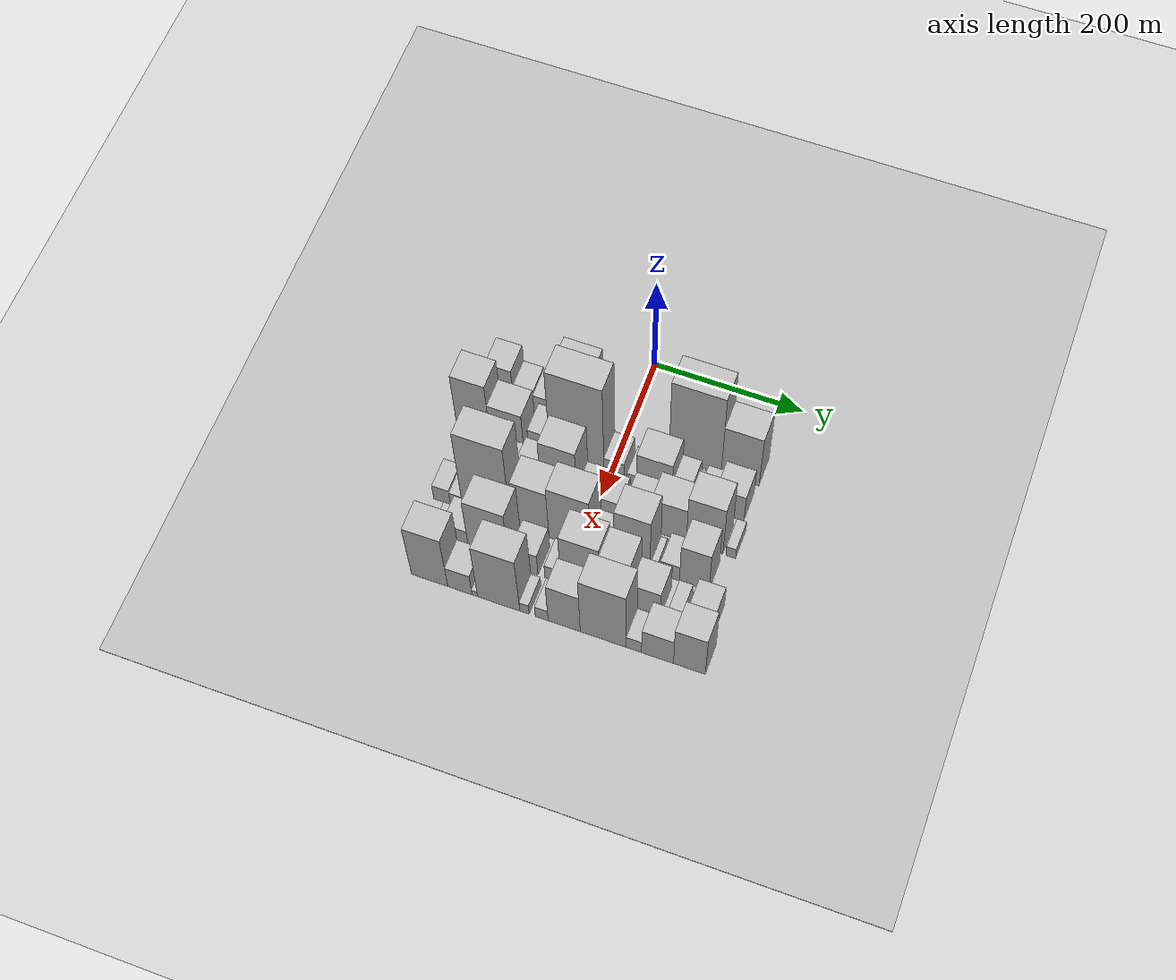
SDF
<sdf version="1.6">
 <world name="default">
  <include><name>ground_plane_1</name><uri>model://HANNAS_ground_plane</uri></include>
  <include>
   <name>ground_plane_2</name>
   <uri>model://HANNAS_ground_plane</uri>
   <pose>100 0 0  0 0 0</pose>
  </include>
  <model name="building_23">
   <static>1</static>
   <pose>100.0000 -166.8493 0 0.000000 0.000000 0.000000</pose>
   <link name="link">
    <pose>0 0 46.50 0 0 0</pose>
    <collision name="collision"><geometry><box><size>40.0000 34.8307 93.0000</size></box></geometry></collision>
    <visual name="visual">
     <cast_shadows>0</cast_shadows>
     <geometry><box><size>40.0000 34.8307 93.0000</size></box></geometry>
     <material>
      <script>
       <uri>model://HANNAS_wall/materials/scripts</uri>
       <uri>model://HANNAS_wall/materials/textures</uri>
       <name>vrc/HANNAS_wall</name>
      </script>
     </material>
    </visual>
   </link>
  </model>
  <model name="building_24">
   <static>1</static>
   <pose>100.0000 -135.8265 0 0.000000 0.000000 0.000000</pose>
   <link name="link">
    <pose>0 0 27.00 0 0 0</pose>
    <collision name="collision"><geometry><box><size>40.0000 27.2150 54.0000</size></box></geometry></collision>
    <visual name="visual">
     <cast_shadows>0</cast_shadows>
     <geometry><box><size>40.0000 27.2150 54.0000</size></box></geometry>
     <material>
      <script>
       <uri>model://HANNAS_wall/materials/scripts</uri>
       <uri>model://HANNAS_wall/materials/textures</uri>
       <name>vrc/HANNAS_wall</name>
      </script>
     </material>
    </visual>
   </link>
  </model>
  <model name="building_25">
   <static>1</static>
   <pose>100.0000 -110.0625 0 0.000000 0.000000 0.000000</pose>
   <link name="link">
    <pose>0 0 24.00 0 0 0</pose>
    <collision name="collision"><geometry><box><size>40.0000 24.3129 48.0000</size></box></geometry></collision>
    <visual name="visual">
     <cast_shadows>0</cast_shadows>
     <geometry><box><size>40.0000 24.3129 48.0000</size></box></geometry>
     <material>
      <script>
       <uri>model://HANNAS_wall/materials/scripts</uri>
       <uri>model://HANNAS_wall/materials/textures</uri>
       <name>vrc/HANNAS_wall</name>
      </script>
     </material>
    </visual>
   </link>
  </model>
  <model name="building_26">
   <static>1</static>
   <pose>100.0000 -66.6376 0 0.000000 0.000000 0.000000</pose>
   <link name="link">
    <pose>0 0 75.00 0 0 0</pose>
    <collision name="collision"><geometry><box><size>40.0000 50.5369 150.0000</size></box></geometry></collision>
    <visual name="visual">
     <cast_shadows>0</cast_shadows>
     <geometry><box><size>40.0000 50.5369 150.0000</size></box></geometry>
     <material>
      <script>
       <uri>model://HANNAS_wall/materials/scripts</uri>
       <uri>model://HANNAS_wall/materials/textures</uri>
       <name>vrc/HANNAS_wall</name>
      </script>
     </material>
    </visual>
   </link>
  </model>
  <model name="building_27">
   <static>1</static>
   <pose>100.0000 95.9631 0 0.000000 0.000000 0.000000</pose>
   <link name="link">
    <pose>0 0 99.00 0 0 0</pose>
    <collision name="collision"><geometry><box><size>40.0000 69.5549 198.0000</size></box></geometry></collision>
    <visual name="visual">
     <cast_shadows>0</cast_shadows>
     <geometry><box><size>40.0000 69.5549 198.0000</size></box></geometry>
     <material>
      <script>
       <uri>model://HANNAS_wall/materials/scripts</uri>
       <uri>model://HANNAS_wall/materials/textures</uri>
       <name>vrc/HANNAS_wall</name>
      </script>
     </material>
    </visual>
   </link>
  </model>
  <model name="building_28">
   <static>1</static>
   <pose>100.0000 155.8747 0 0.000000 0.000000 0.000000</pose>
   <link name="link">
    <pose>0 0 63.00 0 0 0</pose>
    <collision name="collision"><geometry><box><size>40.0000 50.2684 126.0000</size></box></geometry></collision>
    <visual name="visual">
     <cast_shadows>0</cast_shadows>
     <geometry><box><size>40.0000 50.2684 126.0000</size></box></geometry>
     <material>
      <script>
       <uri>model://HANNAS_wall/materials/scripts</uri>
       <uri>model://HANNAS_wall/materials/textures</uri>
       <name>vrc/HANNAS_wall</name>
      </script>
     </material>
    </visual>
   </link>
  </model>
  <model name="building_67">
   <static>1</static>
   <pose>152.0000 -184.3008 0 0.000000 0.000000 0.000000</pose>
   <link name="link">
    <pose>0 0 67.50 0 0 0</pose>
    <collision name="collision"><geometry><box><size>40.0000 45.5087 135.0000</size></box></geometry></collision>
    <visual name="visual">
     <cast_shadows>0</cast_shadows>
     <geometry><box><size>40.0000 45.5087 135.0000</size></box></geometry>
     <material>
      <script>
       <uri>model://HANNAS_wall/materials/scripts</uri>
       <uri>model://HANNAS_wall/materials/textures</uri>
       <name>vrc/HANNAS_wall</name>
      </script>
     </material>
    </visual>
   </link>
  </model>
  <model name="building_68">
   <static>1</static>
   <pose>152.0000 -138.7405 0 0.000000 0.000000 0.000000</pose>
   <link name="link">
    <pose>0 0 43.50 0 0 0</pose>
    <collision name="collision"><geometry><box><size>40.0000 45.6117 87.0000</size></box></geometry></collision>
    <visual name="visual">
     <cast_shadows>0</cast_shadows>
     <geometry><box><size>40.0000 45.6117 87.0000</size></box></geometry>
     <material>
      <script>
       <uri>model://HANNAS_wall/materials/scripts</uri>
       <uri>model://HANNAS_wall/materials/textures</uri>
       <name>vrc/HANNAS_wall</name>
      </script>
     </material>
    </visual>
   </link>
  </model>
  <model name="building_69">
   <static>1</static>
   <pose>152.0000 -94.4507 0 0.000000 0.000000 0.000000</pose>
   <link name="link">
    <pose>0 0 28.50 0 0 0</pose>
    <collision name="collision"><geometry><box><size>40.0000 28.9679 57.0000</size></box></geometry></collision>
    <visual name="visual">
     <cast_shadows>0</cast_shadows>
     <geometry><box><size>40.0000 28.9679 57.0000</size></box></geometry>
     <material>
      <script>
       <uri>model://HANNAS_wall/materials/scripts</uri>
       <uri>model://HANNAS_wall/materials/textures</uri>
       <name>vrc/HANNAS_wall</name>
      </script>
     </material>
    </visual>
   </link>
  </model>
  <model name="building_70">
   <static>1</static>
   <pose>152.0000 -43.6034 0 0.000000 0.000000 0.000000</pose>
   <link name="link">
    <pose>0 0 112.50 0 0 0</pose>
    <collision name="collision"><geometry><box><size>40.0000 72.7267 225.0000</size></box></geometry></collision>
    <visual name="visual">
     <cast_shadows>0</cast_shadows>
     <geometry><box><size>40.0000 72.7267 225.0000</size></box></geometry>
     <material>
      <script>
       <uri>model://HANNAS_wall/materials/scripts</uri>
       <uri>model://HANNAS_wall/materials/textures</uri>
       <name>vrc/HANNAS_wall</name>
      </script>
     </material>
    </visual>
   </link>
  </model>
  <model name="building_71">
   <static>1</static>
   <pose>152.0000 6.1775 0 0.000000 0.000000 0.000000</pose>
   <link name="link">
    <pose>0 0 24.00 0 0 0</pose>
    <collision name="collision"><geometry><box><size>40.0000 26.8352 48.0000</size></box></geometry></collision>
    <visual name="visual">
     <cast_shadows>0</cast_shadows>
     <geometry><box><size>40.0000 26.8352 48.0000</size></box></geometry>
     <material>
      <script>
       <uri>model://HANNAS_wall/materials/scripts</uri>
       <uri>model://HANNAS_wall/materials/textures</uri>
       <name>vrc/HANNAS_wall</name>
      </script>
     </material>
    </visual>
   </link>
  </model>
  <model name="building_72">
   <static>1</static>
   <pose>152.0000 29.9495 0 0.000000 0.000000 0.000000</pose>
   <link name="link">
    <pose>0 0 13.50 0 0 0</pose>
    <collision name="collision"><geometry><box><size>40.0000 12.7089 27.0000</size></box></geometry></collision>
    <visual name="visual">
     <cast_shadows>0</cast_shadows>
     <geometry><box><size>40.0000 12.7089 27.0000</size></box></geometry>
     <material>
      <script>
       <uri>model://HANNAS_wall/materials/scripts</uri>
       <uri>model://HANNAS_wall/materials/textures</uri>
       <name>vrc/HANNAS_wall</name>
      </script>
     </material>
    </visual>
   </link>
  </model>
  <model name="building_73">
   <static>1</static>
   <pose>152.0000 59.8912 0 0.000000 0.000000 0.000000</pose>
   <link name="link">
    <pose>0 0 43.50 0 0 0</pose>
    <collision name="collision"><geometry><box><size>40.0000 47.1745 87.0000</size></box></geometry></collision>
    <visual name="visual">
     <cast_shadows>0</cast_shadows>
     <geometry><box><size>40.0000 47.1745 87.0000</size></box></geometry>
     <material>
      <script>
       <uri>model://HANNAS_wall/materials/scripts</uri>
       <uri>model://HANNAS_wall/materials/textures</uri>
       <name>vrc/HANNAS_wall</name>
      </script>
     </material>
    </visual>
   </link>
  </model>
  <model name="building_74">
   <static>1</static>
   <pose>152.0000 95.9949 0 0.000000 0.000000 0.000000</pose>
   <link name="link">
    <pose>0 0 22.50 0 0 0</pose>
    <collision name="collision"><geometry><box><size>40.0000 25.0328 45.0000</size></box></geometry></collision>
    <visual name="visual">
     <cast_shadows>0</cast_shadows>
     <geometry><box><size>40.0000 25.0328 45.0000</size></box></geometry>
     <material>
      <script>
       <uri>model://HANNAS_wall/materials/scripts</uri>
       <uri>model://HANNAS_wall/materials/textures</uri>
       <name>vrc/HANNAS_wall</name>
      </script>
     </material>
    </visual>
   </link>
  </model>
  <model name="building_75">
   <static>1</static>
   <pose>152.0000 112.9898 0 0.000000 0.000000 0.000000</pose>
   <link name="link">
    <pose>0 0 10.50 0 0 0</pose>
    <collision name="collision"><geometry><box><size>40.0000 8.9571 21.0000</size></box></geometry></collision>
    <visual name="visual">
     <cast_shadows>0</cast_shadows>
     <geometry><box><size>40.0000 8.9571 21.0000</size></box></geometry>
     <material>
      <script>
       <uri>model://HANNAS_wall/materials/scripts</uri>
       <uri>model://HANNAS_wall/materials/textures</uri>
       <name>vrc/HANNAS_wall</name>
      </script>
     </material>
    </visual>
   </link>
  </model>
  <model name="building_76">
   <static>1</static>
   <pose>152.0000 128.7199 0 0.000000 0.000000 0.000000</pose>
   <link name="link">
    <pose>0 0 19.50 0 0 0</pose>
    <collision name="collision"><geometry><box><size>40.0000 22.5031 39.0000</size></box></geometry></collision>
    <visual name="visual">
     <cast_shadows>0</cast_shadows>
     <geometry><box><size>40.0000 22.5031 39.0000</size></box></geometry>
     <material>
      <script>
       <uri>model://HANNAS_wall/materials/scripts</uri>
       <uri>model://HANNAS_wall/materials/textures</uri>
       <name>vrc/HANNAS_wall</name>
      </script>
     </material>
    </visual>
   </link>
  </model>
  <model name="building_77">
   <static>1</static>
   <pose>152.0000 159.2453 0 0.000000 0.000000 0.000000</pose>
   <link name="link">
    <pose>0 0 33.00 0 0 0</pose>
    <collision name="collision"><geometry><box><size>40.0000 38.5477 66.0000</size></box></geometry></collision>
    <visual name="visual">
     <cast_shadows>0</cast_shadows>
     <geometry><box><size>40.0000 38.5477 66.0000</size></box></geometry>
     <material>
      <script>
       <uri>model://HANNAS_wall/materials/scripts</uri>
       <uri>model://HANNAS_wall/materials/textures</uri>
       <name>vrc/HANNAS_wall</name>
      </script>
     </material>
    </visual>
   </link>
  </model>
  <model name="building_119">
   <static>1</static>
   <pose>204.0000 -171.6462 0 0.000000 0.000000 0.000000</pose>
   <link name="link">
    <pose>0 0 18.00 0 0 0</pose>
    <collision name="collision"><geometry><box><size>40.0000 21.2470 36.0000</size></box></geometry></collision>
    <visual name="visual">
     <cast_shadows>0</cast_shadows>
     <geometry><box><size>40.0000 21.2470 36.0000</size></box></geometry>
     <material>
      <script>
       <uri>model://HANNAS_wall/materials/scripts</uri>
       <uri>model://HANNAS_wall/materials/textures</uri>
       <name>vrc/HANNAS_wall</name>
      </script>
     </material>
    </visual>
   </link>
  </model>
  <model name="building_120">
   <static>1</static>
   <pose>204.0000 -142.9327 0 0.000000 0.000000 0.000000</pose>
   <link name="link">
    <pose>0 0 27.00 0 0 0</pose>
    <collision name="collision"><geometry><box><size>40.0000 30.1801 54.0000</size></box></geometry></collision>
    <visual name="visual">
     <cast_shadows>0</cast_shadows>
     <geometry><box><size>40.0000 30.1801 54.0000</size></box></geometry>
     <material>
      <script>
       <uri>model://HANNAS_wall/materials/scripts</uri>
       <uri>model://HANNAS_wall/materials/textures</uri>
       <name>vrc/HANNAS_wall</name>
      </script>
     </material>
    </visual>
   </link>
  </model>
  <model name="building_121">
   <static>1</static>
   <pose>204.0000 -116.5714 0 0.000000 0.000000 0.000000</pose>
   <link name="link">
    <pose>0 0 21.00 0 0 0</pose>
    <collision name="collision"><geometry><box><size>40.0000 22.5425 42.0000</size></box></geometry></collision>
    <visual name="visual">
     <cast_shadows>0</cast_shadows>
     <geometry><box><size>40.0000 22.5425 42.0000</size></box></geometry>
     <material>
      <script>
       <uri>model://HANNAS_wall/materials/scripts</uri>
       <uri>model://HANNAS_wall/materials/textures</uri>
       <name>vrc/HANNAS_wall</name>
      </script>
     </material>
    </visual>
   </link>
  </model>
  <model name="building_122">
   <static>1</static>
   <pose>204.0000 -88.5897 0 0.000000 0.000000 0.000000</pose>
   <link name="link">
    <pose>0 0 31.50 0 0 0</pose>
    <collision name="collision"><geometry><box><size>40.0000 33.4210 63.0000</size></box></geometry></collision>
    <visual name="visual">
     <cast_shadows>0</cast_shadows>
     <geometry><box><size>40.0000 33.4210 63.0000</size></box></geometry>
     <material>
      <script>
       <uri>model://HANNAS_wall/materials/scripts</uri>
       <uri>model://HANNAS_wall/materials/textures</uri>
       <name>vrc/HANNAS_wall</name>
      </script>
     </material>
    </visual>
   </link>
  </model>
  <model name="building_123">
   <static>1</static>
   <pose>204.0000 -47.9838 0 0.000000 0.000000 0.000000</pose>
   <link name="link">
    <pose>0 0 72.00 0 0 0</pose>
    <collision name="collision"><geometry><box><size>40.0000 47.7908 144.0000</size></box></geometry></collision>
    <visual name="visual">
     <cast_shadows>0</cast_shadows>
     <geometry><box><size>40.0000 47.7908 144.0000</size></box></geometry>
     <material>
      <script>
       <uri>model://HANNAS_wall/materials/scripts</uri>
       <uri>model://HANNAS_wall/materials/textures</uri>
       <name>vrc/HANNAS_wall</name>
      </script>
     </material>
    </visual>
   </link>
  </model>
  <model name="building_124">
   <static>1</static>
   <pose>204.0000 -8.7911 0 0.000000 0.000000 0.000000</pose>
   <link name="link">
    <pose>0 0 25.50 0 0 0</pose>
    <collision name="collision"><geometry><box><size>40.0000 30.5945 51.0000</size></box></geometry></collision>
    <visual name="visual">
     <cast_shadows>0</cast_shadows>
     <geometry><box><size>40.0000 30.5945 51.0000</size></box></geometry>
     <material>
      <script>
       <uri>model://HANNAS_wall/materials/scripts</uri>
       <uri>model://HANNAS_wall/materials/textures</uri>
       <name>vrc/HANNAS_wall</name>
      </script>
     </material>
    </visual>
   </link>
  </model>
  <model name="building_125">
   <static>1</static>
   <pose>204.0000 19.5991 0 0.000000 0.000000 0.000000</pose>
   <link name="link">
    <pose>0 0 22.50 0 0 0</pose>
    <collision name="collision"><geometry><box><size>40.0000 26.1859 45.0000</size></box></geometry></collision>
    <visual name="visual">
     <cast_shadows>0</cast_shadows>
     <geometry><box><size>40.0000 26.1859 45.0000</size></box></geometry>
     <material>
      <script>
       <uri>model://HANNAS_wall/materials/scripts</uri>
       <uri>model://HANNAS_wall/materials/textures</uri>
       <name>vrc/HANNAS_wall</name>
      </script>
     </material>
    </visual>
   </link>
  </model>
  <model name="building_126">
   <static>1</static>
   <pose>204.0000 57.2526 0 0.000000 0.000000 0.000000</pose>
   <link name="link">
    <pose>0 0 33.00 0 0 0</pose>
    <collision name="collision"><geometry><box><size>40.0000 33.1210 66.0000</size></box></geometry></collision>
    <visual name="visual">
     <cast_shadows>0</cast_shadows>
     <geometry><box><size>40.0000 33.1210 66.0000</size></box></geometry>
     <material>
      <script>
       <uri>model://HANNAS_wall/materials/scripts</uri>
       <uri>model://HANNAS_wall/materials/textures</uri>
       <name>vrc/HANNAS_wall</name>
      </script>
     </material>
    </visual>
   </link>
  </model>
  <model name="building_127">
   <static>1</static>
   <pose>204.0000 97.2306 0 0.000000 0.000000 0.000000</pose>
   <link name="link">
    <pose>0 0 45.00 0 0 0</pose>
    <collision name="collision"><geometry><box><size>40.0000 46.8351 90.0000</size></box></geometry></collision>
    <visual name="visual">
     <cast_shadows>0</cast_shadows>
     <geometry><box><size>40.0000 46.8351 90.0000</size></box></geometry>
     <material>
      <script>
       <uri>model://HANNAS_wall/materials/scripts</uri>
       <uri>model://HANNAS_wall/materials/textures</uri>
       <name>vrc/HANNAS_wall</name>
      </script>
     </material>
    </visual>
   </link>
  </model>
  <model name="building_128">
   <static>1</static>
   <pose>204.0000 144.5070 0 0.000000 0.000000 0.000000</pose>
   <link name="link">
    <pose>0 0 63.00 0 0 0</pose>
    <collision name="collision"><geometry><box><size>40.0000 47.7177 126.0000</size></box></geometry></collision>
    <visual name="visual">
     <cast_shadows>0</cast_shadows>
     <geometry><box><size>40.0000 47.7177 126.0000</size></box></geometry>
     <material>
      <script>
       <uri>model://HANNAS_wall/materials/scripts</uri>
       <uri>model://HANNAS_wall/materials/textures</uri>
       <name>vrc/HANNAS_wall</name>
      </script>
     </material>
    </visual>
   </link>
  </model>
  <model name="building_129">
   <static>1</static>
   <pose>204.0000 178.7596 0 0.000000 0.000000 0.000000</pose>
   <link name="link">
    <pose>0 0 13.50 0 0 0</pose>
    <collision name="collision"><geometry><box><size>40.0000 12.7875 27.0000</size></box></geometry></collision>
    <visual name="visual">
     <cast_shadows>0</cast_shadows>
     <geometry><box><size>40.0000 12.7875 27.0000</size></box></geometry>
     <material>
      <script>
       <uri>model://HANNAS_wall/materials/scripts</uri>
       <uri>model://HANNAS_wall/materials/textures</uri>
       <name>vrc/HANNAS_wall</name>
      </script>
     </material>
    </visual>
   </link>
  </model>
  <model name="building_166">
   <static>1</static>
   <pose>256.0000 -184.8962 0 0.000000 0.000000 0.000000</pose>
   <link name="link">
    <pose>0 0 19.50 0 0 0</pose>
    <collision name="collision"><geometry><box><size>40.0000 22.3189 39.0000</size></box></geometry></collision>
    <visual name="visual">
     <cast_shadows>0</cast_shadows>
     <geometry><box><size>40.0000 22.3189 39.0000</size></box></geometry>
     <material>
      <script>
       <uri>model://HANNAS_wall/materials/scripts</uri>
       <uri>model://HANNAS_wall/materials/textures</uri>
       <name>vrc/HANNAS_wall</name>
      </script>
     </material>
    </visual>
   </link>
  </model>
  <model name="building_167">
   <static>1</static>
   <pose>256.0000 -165.2519 0 0.000000 0.000000 0.000000</pose>
   <link name="link">
    <pose>0 0 16.50 0 0 0</pose>
    <collision name="collision"><geometry><box><size>40.0000 16.9697 33.0000</size></box></geometry></collision>
    <visual name="visual">
     <cast_shadows>0</cast_shadows>
     <geometry><box><size>40.0000 16.9697 33.0000</size></box></geometry>
     <material>
      <script>
       <uri>model://HANNAS_wall/materials/scripts</uri>
       <uri>model://HANNAS_wall/materials/textures</uri>
       <name>vrc/HANNAS_wall</name>
      </script>
     </material>
    </visual>
   </link>
  </model>
  <model name="building_168">
   <static>1</static>
   <pose>256.0000 -124.6970 0 0.000000 0.000000 0.000000</pose>
   <link name="link">
    <pose>0 0 103.50 0 0 0</pose>
    <collision name="collision"><geometry><box><size>40.0000 64.1401 207.0000</size></box></geometry></collision>
    <visual name="visual">
     <cast_shadows>0</cast_shadows>
     <geometry><box><size>40.0000 64.1401 207.0000</size></box></geometry>
     <material>
      <script>
       <uri>model://HANNAS_wall/materials/scripts</uri>
       <uri>model://HANNAS_wall/materials/textures</uri>
       <name>vrc/HANNAS_wall</name>
      </script>
     </material>
    </visual>
   </link>
  </model>
  <model name="building_169">
   <static>1</static>
   <pose>256.0000 -65.1473 0 0.000000 0.000000 0.000000</pose>
   <link name="link">
    <pose>0 0 61.50 0 0 0</pose>
    <collision name="collision"><geometry><box><size>40.0000 46.9593 123.0000</size></box></geometry></collision>
    <visual name="visual">
     <cast_shadows>0</cast_shadows>
     <geometry><box><size>40.0000 46.9593 123.0000</size></box></geometry>
     <material>
      <script>
       <uri>model://HANNAS_wall/materials/scripts</uri>
       <uri>model://HANNAS_wall/materials/textures</uri>
       <name>vrc/HANNAS_wall</name>
      </script>
     </material>
    </visual>
   </link>
  </model>
  <model name="building_170">
   <static>1</static>
   <pose>256.0000 -14.2713 0 0.000000 0.000000 0.000000</pose>
   <link name="link">
    <pose>0 0 69.00 0 0 0</pose>
    <collision name="collision"><geometry><box><size>40.0000 54.7929 138.0000</size></box></geometry></collision>
    <visual name="visual">
     <cast_shadows>0</cast_shadows>
     <geometry><box><size>40.0000 54.7929 138.0000</size></box></geometry>
     <material>
      <script>
       <uri>model://HANNAS_wall/materials/scripts</uri>
       <uri>model://HANNAS_wall/materials/textures</uri>
       <name>vrc/HANNAS_wall</name>
      </script>
     </material>
    </visual>
   </link>
  </model>
  <model name="building_171">
   <static>1</static>
   <pose>256.0000 24.4122 0 0.000000 0.000000 0.000000</pose>
   <link name="link">
    <pose>0 0 21.00 0 0 0</pose>
    <collision name="collision"><geometry><box><size>40.0000 22.5740 42.0000</size></box></geometry></collision>
    <visual name="visual">
     <cast_shadows>0</cast_shadows>
     <geometry><box><size>40.0000 22.5740 42.0000</size></box></geometry>
     <material>
      <script>
       <uri>model://HANNAS_wall/materials/scripts</uri>
       <uri>model://HANNAS_wall/materials/textures</uri>
       <name>vrc/HANNAS_wall</name>
      </script>
     </material>
    </visual>
   </link>
  </model>
  <model name="building_172">
   <static>1</static>
   <pose>256.0000 68.0506 0 0.000000 0.000000 0.000000</pose>
   <link name="link">
    <pose>0 0 69.00 0 0 0</pose>
    <collision name="collision"><geometry><box><size>40.0000 46.7029 138.0000</size></box></geometry></collision>
    <visual name="visual">
     <cast_shadows>0</cast_shadows>
     <geometry><box><size>40.0000 46.7029 138.0000</size></box></geometry>
     <material>
      <script>
       <uri>model://HANNAS_wall/materials/scripts</uri>
       <uri>model://HANNAS_wall/materials/textures</uri>
       <name>vrc/HANNAS_wall</name>
      </script>
     </material>
    </visual>
   </link>
  </model>
  <model name="building_173">
   <static>1</static>
   <pose>256.0000 95.7640 0 0.000000 0.000000 0.000000</pose>
   <link name="link">
    <pose>0 0 10.50 0 0 0</pose>
    <collision name="collision"><geometry><box><size>40.0000 8.7239 21.0000</size></box></geometry></collision>
    <visual name="visual">
     <cast_shadows>0</cast_shadows>
     <geometry><box><size>40.0000 8.7239 21.0000</size></box></geometry>
     <material>
      <script>
       <uri>model://HANNAS_wall/materials/scripts</uri>
       <uri>model://HANNAS_wall/materials/textures</uri>
       <name>vrc/HANNAS_wall</name>
      </script>
     </material>
    </visual>
   </link>
  </model>
  <model name="building_174">
   <static>1</static>
   <pose>256.0000 117.5075 0 0.000000 0.000000 0.000000</pose>
   <link name="link">
    <pose>0 0 21.00 0 0 0</pose>
    <collision name="collision"><geometry><box><size>40.0000 24.7632 42.0000</size></box></geometry></collision>
    <visual name="visual">
     <cast_shadows>0</cast_shadows>
     <geometry><box><size>40.0000 24.7632 42.0000</size></box></geometry>
     <material>
      <script>
       <uri>model://HANNAS_wall/materials/scripts</uri>
       <uri>model://HANNAS_wall/materials/textures</uri>
       <name>vrc/HANNAS_wall</name>
      </script>
     </material>
    </visual>
   </link>
  </model>
  <model name="building_175">
   <static>1</static>
   <pose>256.0000 149.0656 0 0.000000 0.000000 0.000000</pose>
   <link name="link">
    <pose>0 0 51.00 0 0 0</pose>
    <collision name="collision"><geometry><box><size>40.0000 38.3529 102.0000</size></box></geometry></collision>
    <visual name="visual">
     <cast_shadows>0</cast_shadows>
     <geometry><box><size>40.0000 38.3529 102.0000</size></box></geometry>
     <material>
      <script>
       <uri>model://HANNAS_wall/materials/scripts</uri>
       <uri>model://HANNAS_wall/materials/textures</uri>
       <name>vrc/HANNAS_wall</name>
      </script>
     </material>
    </visual>
   </link>
  </model>
  <model name="building_218">
   <static>1</static>
   <pose>308.0000 -167.5558 0 0.000000 0.000000 0.000000</pose>
   <link name="link">
    <pose>0 0 15.00 0 0 0</pose>
    <collision name="collision"><geometry><box><size>40.0000 16.1662 30.0000</size></box></geometry></collision>
    <visual name="visual">
     <cast_shadows>0</cast_shadows>
     <geometry><box><size>40.0000 16.1662 30.0000</size></box></geometry>
     <material>
      <script>
       <uri>model://HANNAS_wall/materials/scripts</uri>
       <uri>model://HANNAS_wall/materials/textures</uri>
       <name>vrc/HANNAS_wall</name>
      </script>
     </material>
    </visual>
   </link>
  </model>
  <model name="building_219">
   <static>1</static>
   <pose>308.0000 -143.4528 0 0.000000 0.000000 0.000000</pose>
   <link name="link">
    <pose>0 0 30.00 0 0 0</pose>
    <collision name="collision"><geometry><box><size>40.0000 32.0397 60.0000</size></box></geometry></collision>
    <visual name="visual">
     <cast_shadows>0</cast_shadows>
     <geometry><box><size>40.0000 32.0397 60.0000</size></box></geometry>
     <material>
      <script>
       <uri>model://HANNAS_wall/materials/scripts</uri>
       <uri>model://HANNAS_wall/materials/textures</uri>
       <name>vrc/HANNAS_wall</name>
      </script>
     </material>
    </visual>
   </link>
  </model>
  <model name="building_220">
   <static>1</static>
   <pose>308.0000 -100.9031 0 0.000000 0.000000 0.000000</pose>
   <link name="link">
    <pose>0 0 72.00 0 0 0</pose>
    <collision name="collision"><geometry><box><size>40.0000 53.0597 144.0000</size></box></geometry></collision>
    <visual name="visual">
     <cast_shadows>0</cast_shadows>
     <geometry><box><size>40.0000 53.0597 144.0000</size></box></geometry>
     <material>
      <script>
       <uri>model://HANNAS_wall/materials/scripts</uri>
       <uri>model://HANNAS_wall/materials/textures</uri>
       <name>vrc/HANNAS_wall</name>
      </script>
     </material>
    </visual>
   </link>
  </model>
  <model name="building_221">
   <static>1</static>
   <pose>308.0000 -52.7690 0 0.000000 0.000000 0.000000</pose>
   <link name="link">
    <pose>0 0 28.50 0 0 0</pose>
    <collision name="collision"><geometry><box><size>40.0000 33.2086 57.0000</size></box></geometry></collision>
    <visual name="visual">
     <cast_shadows>0</cast_shadows>
     <geometry><box><size>40.0000 33.2086 57.0000</size></box></geometry>
     <material>
      <script>
       <uri>model://HANNAS_wall/materials/scripts</uri>
       <uri>model://HANNAS_wall/materials/textures</uri>
       <name>vrc/HANNAS_wall</name>
      </script>
     </material>
    </visual>
   </link>
  </model>
  <model name="building_222">
   <static>1</static>
   <pose>308.0000 -16.7462 0 0.000000 0.000000 0.000000</pose>
   <link name="link">
    <pose>0 0 18.00 0 0 0</pose>
    <collision name="collision"><geometry><box><size>40.0000 20.8369 36.0000</size></box></geometry></collision>
    <visual name="visual">
     <cast_shadows>0</cast_shadows>
     <geometry><box><size>40.0000 20.8369 36.0000</size></box></geometry>
     <material>
      <script>
       <uri>model://HANNAS_wall/materials/scripts</uri>
       <uri>model://HANNAS_wall/materials/textures</uri>
       <name>vrc/HANNAS_wall</name>
      </script>
     </material>
    </visual>
   </link>
  </model>
  <model name="building_223">
   <static>1</static>
   <pose>308.0000 19.2251 0 0.000000 0.000000 0.000000</pose>
   <link name="link">
    <pose>0 0 67.50 0 0 0</pose>
    <collision name="collision"><geometry><box><size>40.0000 51.1057 135.0000</size></box></geometry></collision>
    <visual name="visual">
     <cast_shadows>0</cast_shadows>
     <geometry><box><size>40.0000 51.1057 135.0000</size></box></geometry>
     <material>
      <script>
       <uri>model://HANNAS_wall/materials/scripts</uri>
       <uri>model://HANNAS_wall/materials/textures</uri>
       <name>vrc/HANNAS_wall</name>
      </script>
     </material>
    </visual>
   </link>
  </model>
  <model name="building_224">
   <static>1</static>
   <pose>308.0000 64.7984 0 0.000000 0.000000 0.000000</pose>
   <link name="link">
    <pose>0 0 61.50 0 0 0</pose>
    <collision name="collision"><geometry><box><size>40.0000 40.0409 123.0000</size></box></geometry></collision>
    <visual name="visual">
     <cast_shadows>0</cast_shadows>
     <geometry><box><size>40.0000 40.0409 123.0000</size></box></geometry>
     <material>
      <script>
       <uri>model://HANNAS_wall/materials/scripts</uri>
       <uri>model://HANNAS_wall/materials/textures</uri>
       <name>vrc/HANNAS_wall</name>
      </script>
     </material>
    </visual>
   </link>
  </model>
  <model name="building_225">
   <static>1</static>
   <pose>308.0000 104.2365 0 0.000000 0.000000 0.000000</pose>
   <link name="link">
    <pose>0 0 33.00 0 0 0</pose>
    <collision name="collision"><geometry><box><size>40.0000 38.8351 66.0000</size></box></geometry></collision>
    <visual name="visual">
     <cast_shadows>0</cast_shadows>
     <geometry><box><size>40.0000 38.8351 66.0000</size></box></geometry>
     <material>
      <script>
       <uri>model://HANNAS_wall/materials/scripts</uri>
       <uri>model://HANNAS_wall/materials/textures</uri>
       <name>vrc/HANNAS_wall</name>
      </script>
     </material>
    </visual>
   </link>
  </model>
  <model name="building_226">
   <static>1</static>
   <pose>308.0000 142.4642 0 0.000000 0.000000 0.000000</pose>
   <link name="link">
    <pose>0 0 16.50 0 0 0</pose>
    <collision name="collision"><geometry><box><size>40.0000 17.6205 33.0000</size></box></geometry></collision>
    <visual name="visual">
     <cast_shadows>0</cast_shadows>
     <geometry><box><size>40.0000 17.6205 33.0000</size></box></geometry>
     <material>
      <script>
       <uri>model://HANNAS_wall/materials/scripts</uri>
       <uri>model://HANNAS_wall/materials/textures</uri>
       <name>vrc/HANNAS_wall</name>
      </script>
     </material>
    </visual>
   </link>
  </model>
  <model name="building_227">
   <static>1</static>
   <pose>308.0000 175.2860 0 0.000000 0.000000 0.000000</pose>
   <link name="link">
    <pose>0 0 28.50 0 0 0</pose>
    <collision name="collision"><geometry><box><size>40.0000 34.0230 57.0000</size></box></geometry></collision>
    <visual name="visual">
     <cast_shadows>0</cast_shadows>
     <geometry><box><size>40.0000 34.0230 57.0000</size></box></geometry>
     <material>
      <script>
       <uri>model://HANNAS_wall/materials/scripts</uri>
       <uri>model://HANNAS_wall/materials/textures</uri>
       <name>vrc/HANNAS_wall</name>
      </script>
     </material>
    </visual>
   </link>
  </model>
  <model name="building_266">
   <static>1</static>
   <pose>360.0000 -158.7866 0 0.000000 0.000000 0.000000</pose>
   <link name="link">
    <pose>0 0 67.50 0 0 0</pose>
    <collision name="collision"><geometry><box><size>40.0000 48.2486 135.0000</size></box></geometry></collision>
    <visual name="visual">
     <cast_shadows>0</cast_shadows>
     <geometry><box><size>40.0000 48.2486 135.0000</size></box></geometry>
     <material>
      <script>
       <uri>model://HANNAS_wall/materials/scripts</uri>
       <uri>model://HANNAS_wall/materials/textures</uri>
       <name>vrc/HANNAS_wall</name>
      </script>
     </material>
    </visual>
   </link>
  </model>
  <model name="building_267">
   <static>1</static>
   <pose>360.0000 -118.6960 0 0.000000 0.000000 0.000000</pose>
   <link name="link">
    <pose>0 0 28.50 0 0 0</pose>
    <collision name="collision"><geometry><box><size>40.0000 31.9326 57.0000</size></box></geometry></collision>
    <visual name="visual">
     <cast_shadows>0</cast_shadows>
     <geometry><box><size>40.0000 31.9326 57.0000</size></box></geometry>
     <material>
      <script>
       <uri>model://HANNAS_wall/materials/scripts</uri>
       <uri>model://HANNAS_wall/materials/textures</uri>
       <name>vrc/HANNAS_wall</name>
      </script>
     </material>
    </visual>
   </link>
  </model>
  <model name="building_268">
   <static>1</static>
   <pose>360.0000 -99.0884 0 0.000000 0.000000 0.000000</pose>
   <link name="link">
    <pose>0 0 7.50 0 0 0</pose>
    <collision name="collision"><geometry><box><size>40.0000 7.2828 15.0000</size></box></geometry></collision>
    <visual name="visual">
     <cast_shadows>0</cast_shadows>
     <geometry><box><size>40.0000 7.2828 15.0000</size></box></geometry>
     <material>
      <script>
       <uri>model://HANNAS_wall/materials/scripts</uri>
       <uri>model://HANNAS_wall/materials/textures</uri>
       <name>vrc/HANNAS_wall</name>
      </script>
     </material>
    </visual>
   </link>
  </model>
  <model name="building_269">
   <static>1</static>
   <pose>360.0000 -67.7471 0 0.000000 0.000000 0.000000</pose>
   <link name="link">
    <pose>0 0 73.50 0 0 0</pose>
    <collision name="collision"><geometry><box><size>40.0000 55.3998 147.0000</size></box></geometry></collision>
    <visual name="visual">
     <cast_shadows>0</cast_shadows>
     <geometry><box><size>40.0000 55.3998 147.0000</size></box></geometry>
     <material>
      <script>
       <uri>model://HANNAS_wall/materials/scripts</uri>
       <uri>model://HANNAS_wall/materials/textures</uri>
       <name>vrc/HANNAS_wall</name>
      </script>
     </material>
    </visual>
   </link>
  </model>
  <model name="building_270">
   <static>1</static>
   <pose>360.0000 -33.8571 0 0.000000 0.000000 0.000000</pose>
   <link name="link">
    <pose>0 0 13.50 0 0 0</pose>
    <collision name="collision"><geometry><box><size>40.0000 12.3802 27.0000</size></box></geometry></collision>
    <visual name="visual">
     <cast_shadows>0</cast_shadows>
     <geometry><box><size>40.0000 12.3802 27.0000</size></box></geometry>
     <material>
      <script>
       <uri>model://HANNAS_wall/materials/scripts</uri>
       <uri>model://HANNAS_wall/materials/textures</uri>
       <name>vrc/HANNAS_wall</name>
      </script>
     </material>
    </visual>
   </link>
  </model>
  <model name="building_271">
   <static>1</static>
   <pose>360.0000 -11.3135 0 0.000000 0.000000 0.000000</pose>
   <link name="link">
    <pose>0 0 15.00 0 0 0</pose>
    <collision name="collision"><geometry><box><size>40.0000 16.7069 30.0000</size></box></geometry></collision>
    <visual name="visual">
     <cast_shadows>0</cast_shadows>
     <geometry><box><size>40.0000 16.7069 30.0000</size></box></geometry>
     <material>
      <script>
       <uri>model://HANNAS_wall/materials/scripts</uri>
       <uri>model://HANNAS_wall/materials/textures</uri>
       <name>vrc/HANNAS_wall</name>
      </script>
     </material>
    </visual>
   </link>
  </model>
  <model name="building_272">
   <static>1</static>
   <pose>360.0000 17.8710 0 0.000000 0.000000 0.000000</pose>
   <link name="link">
    <pose>0 0 52.50 0 0 0</pose>
    <collision name="collision"><geometry><box><size>40.0000 41.6622 105.0000</size></box></geometry></collision>
    <visual name="visual">
     <cast_shadows>0</cast_shadows>
     <geometry><box><size>40.0000 41.6622 105.0000</size></box></geometry>
     <material>
      <script>
       <uri>model://HANNAS_wall/materials/scripts</uri>
       <uri>model://HANNAS_wall/materials/textures</uri>
       <name>vrc/HANNAS_wall</name>
      </script>
     </material>
    </visual>
   </link>
  </model>
  <model name="building_273">
   <static>1</static>
   <pose>360.0000 68.4222 0 0.000000 0.000000 0.000000</pose>
   <link name="link">
    <pose>0 0 76.50 0 0 0</pose>
    <collision name="collision"><geometry><box><size>40.0000 59.4402 153.0000</size></box></geometry></collision>
    <visual name="visual">
     <cast_shadows>0</cast_shadows>
     <geometry><box><size>40.0000 59.4402 153.0000</size></box></geometry>
     <material>
      <script>
       <uri>model://HANNAS_wall/materials/scripts</uri>
       <uri>model://HANNAS_wall/materials/textures</uri>
       <name>vrc/HANNAS_wall</name>
      </script>
     </material>
    </visual>
   </link>
  </model>
  <model name="building_274">
   <static>1</static>
   <pose>360.0000 108.0006 0 0.000000 0.000000 0.000000</pose>
   <link name="link">
    <pose>0 0 16.50 0 0 0</pose>
    <collision name="collision"><geometry><box><size>40.0000 19.7168 33.0000</size></box></geometry></collision>
    <visual name="visual">
     <cast_shadows>0</cast_shadows>
     <geometry><box><size>40.0000 19.7168 33.0000</size></box></geometry>
     <material>
      <script>
       <uri>model://HANNAS_wall/materials/scripts</uri>
       <uri>model://HANNAS_wall/materials/textures</uri>
       <name>vrc/HANNAS_wall</name>
      </script>
     </material>
    </visual>
   </link>
  </model>
  <model name="building_275">
   <static>1</static>
   <pose>360.0000 138.3202 0 0.000000 0.000000 0.000000</pose>
   <link name="link">
    <pose>0 0 34.50 0 0 0</pose>
    <collision name="collision"><geometry><box><size>40.0000 40.9224 69.0000</size></box></geometry></collision>
    <visual name="visual">
     <cast_shadows>0</cast_shadows>
     <geometry><box><size>40.0000 40.9224 69.0000</size></box></geometry>
     <material>
      <script>
       <uri>model://HANNAS_wall/materials/scripts</uri>
       <uri>model://HANNAS_wall/materials/textures</uri>
       <name>vrc/HANNAS_wall</name>
      </script>
     </material>
    </visual>
   </link>
  </model>
  <model name="building_276">
   <static>1</static>
   <pose>360.0000 179.1055 0 0.000000 0.000000 0.000000</pose>
   <link name="link">
    <pose>0 0 52.50 0 0 0</pose>
    <collision name="collision"><geometry><box><size>40.0000 40.6483 105.0000</size></box></geometry></collision>
    <visual name="visual">
     <cast_shadows>0</cast_shadows>
     <geometry><box><size>40.0000 40.6483 105.0000</size></box></geometry>
     <material>
      <script>
       <uri>model://HANNAS_wall/materials/scripts</uri>
       <uri>model://HANNAS_wall/materials/textures</uri>
       <name>vrc/HANNAS_wall</name>
      </script>
     </material>
    </visual>
   </link>
  </model>
 </world>
</sdf>
